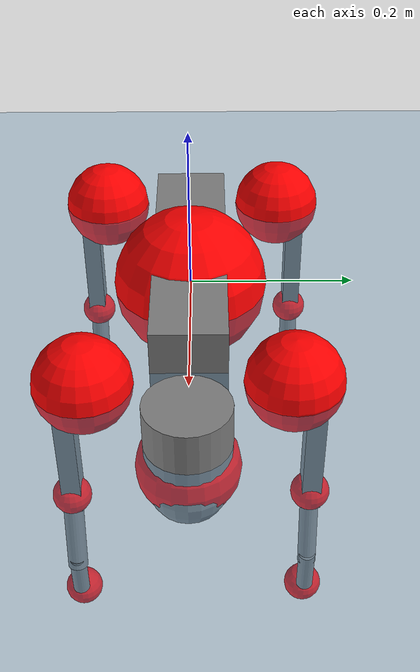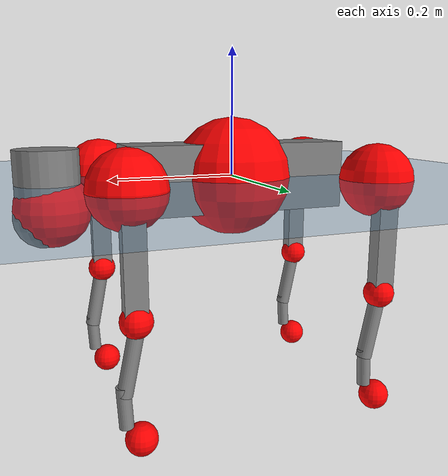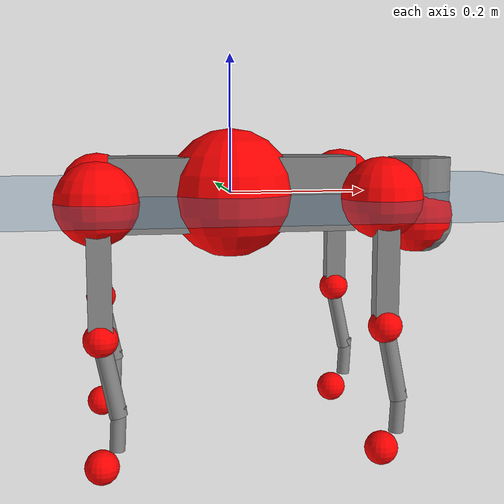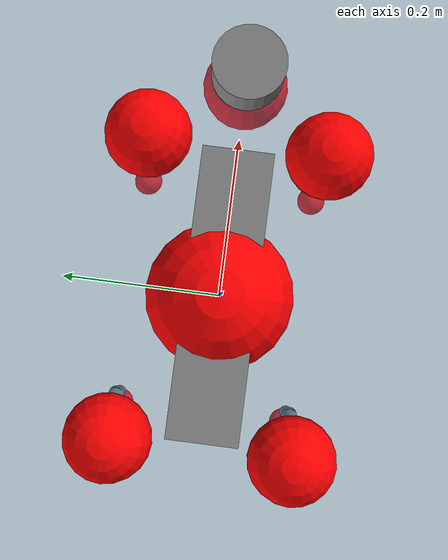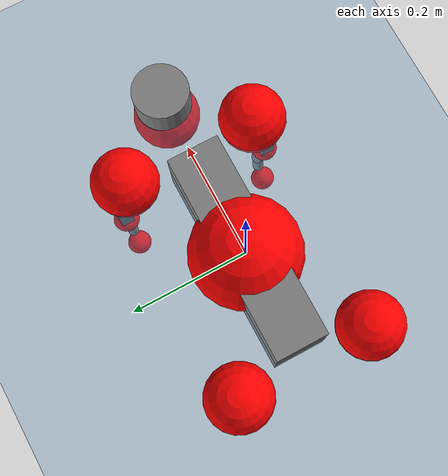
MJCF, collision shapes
<mujoco model="go2">
  <compiler angle="radian" assetdir="assets" balanceinertia="true" inertiafromgeom="false"/>

  <option timestep="0.005" density="1.2" viscosity="2e-05"/>

  <size nkey="1"/>

  <visual>
    <quality shadowsize="8192"/>
    <map shadowclip="0.5"/>
  </visual>

  <default>
    <default class="/">
      <geom contype="0" conaffinity="0" group="1" solref="-1000 -80"/>
      <site size="0.01 0.005 0.005" group="5"/>
      <general forcelimited="true" biastype="affine" gainprm="20" biasprm="0 -20 -0.5"/>
      <default class="go2">
        <joint armature="0.01" damping="0.01" frictionloss="0.2"/>
        <geom condim="1" margin="0.001"/>
        <default class="visual">
          <geom type="mesh" group="2"/>
        </default>
        <default class="collision">
          <geom group="3"/>
          <default class="foot">
            <geom size="0.022 0 0" condim="6" priority="1" friction="0.8 0.02 0.01" solimp="0.015 1 0.022"/>
          </default>
        </default>
        <default class="reward_collision_sphere">
          <geom group="5" rgba="1 0 0 1"/>
        </default>
      </default>
    </default>
  </default>

  <asset>
    <texture type="skybox" colorspace="auto" name="//unnamed_texture_0" builtin="gradient" rgb1="0.95 0.95 0.95" rgb2="0.95 0.95 0.95" width="100" height="600"/>
    <texture type="2d" colorspace="auto" name="texplane" builtin="checker" rgb1="0.345 0.575 0.748" rgb2="0.345 0.575 0.748" markrgb="1 1 1" width="512" height="512"/>
    <material name="MatPlane" class="/" texture="texplane" texuniform="true" texrepeat="2 2" specular="0.9"/>
    <material name="metal" class="/" rgba="0.9 0.95 0.95 1"/>
    <material name="black" class="/" rgba="0 0 0 1"/>
    <material name="white" class="/"/>
    <material name="gray" class="/" rgba="0.671705 0.692426 0.77427 1"/>
    <mesh name="base_0" class="/" file="base_0.obj"/>
    <mesh name="base_1" class="/" file="base_1.obj"/>
    <mesh name="base_2" class="/" file="base_2.obj"/>
    <mesh name="base_3" class="/" file="base_3.obj"/>
    <mesh name="base_4" class="/" file="base_4.obj"/>
    <mesh name="hip_0" class="/" file="hip_0.obj"/>
    <mesh name="hip_1" class="/" file="hip_1.obj"/>
    <mesh name="thigh_0" class="/" file="thigh_0.obj"/>
    <mesh name="thigh_1" class="/" file="thigh_1.obj"/>
    <mesh name="thigh_mirror_0" class="/" file="thigh_mirror_0.obj"/>
    <mesh name="thigh_mirror_1" class="/" file="thigh_mirror_1.obj"/>
    <mesh name="calf_0" class="/" file="calf_0.obj"/>
    <mesh name="calf_1" class="/" file="calf_1.obj"/>
    <mesh name="calf_mirror_0" class="/" file="calf_mirror_0.obj"/>
    <mesh name="calf_mirror_1" class="/" file="calf_mirror_1.obj"/>
    <mesh name="foot" class="/" file="foot.obj"/>
  </asset>

  <worldbody>
    <geom name="floor" class="/" size="100 100 0.125" type="plane" group="0" material="MatPlane"/>
    <light name="toplight_shadow" class="/" pos="0 0 5" dir="0.0990148 0.0990148 -0.990148" type="directional" ambient="0.04 0.04 0.04" diffuse="0.55 0.55 0.55" specular="0.12 0.12 0.12"/>
    <light name="toplight_fill" class="/" pos="0 0 5" dir="0.0990148 0.0990148 -0.990148" type="directional" castshadow="false" ambient="0.04 0.04 0.04" diffuse="0.3 0.3 0.3" specular="0.08 0.08 0.08"/>
    <body name="trunk" childclass="go2" pos="8.92436e-05 -0.000142383 -0.000678951" quat="1 0.000269905 0.000347471 0.000192735">
      <inertial pos="0.0193016 -0.00065612 -0.00359592" quat="-0.000296123 0.713461 -0.000848194 0.700694" mass="5.87214" diaginertia="0.111183 0.0967281 0.00913661"/>
      <joint name="//unnamed_joint_0" type="free" armature="0" damping="0" frictionloss="0"/>
      <geom name="//unnamed_geom_1" class="visual" material="black" mesh="base_0"/>
      <geom name="//unnamed_geom_2" class="visual" material="black" mesh="base_1"/>
      <geom name="//unnamed_geom_3" class="visual" material="black" mesh="base_2"/>
      <geom name="//unnamed_geom_4" class="visual" material="white" mesh="base_3"/>
      <geom name="//unnamed_geom_5" class="visual" material="gray" mesh="base_4"/>
      <geom name="trunk_1" class="collision" size="0.17716 0.0440311 0.053685" type="box"/>
      <geom name="trunk_2" class="collision" size="0.0470921 0.0423829" pos="0.287211 0 0.00820638" type="cylinder"/>
      <geom name="trunk_3" class="collision" size="0.0442666" pos="0.295273 0 -0.0492383"/>
      <geom name="//unnamed_geom_9" class="reward_collision_sphere" size="0.0941842"/>
      <geom name="//unnamed_geom_10" class="reward_collision_sphere" size="0.0565105" pos="0.282173 0 -0.0369287"/>
      <site name="imu" pos="-0.0200398 0.000466499 0.0291117" size="0.00941842"/>
      <camera name="track" pos="0 -1.99426 0" quat="0.707107 0.707107 0 0" mode="trackcom"/>
      <camera name="ego_camera" pos="0.314421 0 0.0369287" quat="-0.5 -0.5 0.5 0.5"/>
      <body name="FL_hip" pos="0.194342 0.046539 0.002234" quat="1 0.000300968 -9.69244e-05 4.6927e-05">
        <inertial pos="-0.00529433 0.00238701 -2.58099e-06" quat="0.497133 0.499213 0.505662 0.497946" mass="0.547027" diaginertia="0.00089819 0.00057233 0.000174327"/>
        <joint name="FL_hip_joint" pos="0 0 0" axis="1 3.85894e-05 0.000449307" range="-1.04899 1.03165" armature="0.00927015" damping="0.00154622" frictionloss="0.193399"/>
        <geom name="//unnamed_geom_11" class="visual" material="metal" mesh="hip_0"/>
        <geom name="//unnamed_geom_12" class="visual" material="gray" mesh="hip_1"/>
        <geom name="//unnamed_geom_13" class="collision" size="0.0433247 0.0188368" pos="0 0.0797703 0" quat="0.707107 0.707107 0 0" type="cylinder"/>
        <geom name="//unnamed_geom_14" class="reward_collision_sphere" size="0.0565105" pos="0 0.069799 0"/>
        <body name="FL_thigh" pos="0.000184359 0.0962539 0.00115839" quat="1 -0.000220944 0.000392828 0.000166693">
          <inertial pos="-0.00410037 -0.0220135 -0.027588" quat="0.829407 0.0848621 -0.0199364 0.551801" mass="0.964356" diaginertia="0.00616317 0.00562838 0.000324572"/>
          <joint name="FL_thigh_joint" pos="0 0 0" axis="-0.00829325 0.99996 -0.00322107" stiffness="0.0023719" range="-1.55291 3.48201" armature="0.00942637" damping="0.00685164" frictionloss="0.196459"/>
          <geom name="//unnamed_geom_15" class="visual" material="metal" mesh="thigh_0"/>
          <geom name="//unnamed_geom_16" class="visual" material="gray" mesh="thigh_1"/>
          <geom name="//unnamed_geom_17" class="collision" size="0.100306 0.0115376 0.0160113" pos="0 0 -0.0873979" quat="0.707107 0 0.707107 0" type="box"/>
          <body name="FL_calf" pos="-0.000893014 -0.000202892 -0.175185" quat="1 6.6776e-05 5.31089e-05 7.07053e-05">
            <inertial pos="0.00627258 -0.000290797 -0.114503" quat="0.710314 0.00186695 -0.00473091 0.703866" mass="0.201017" diaginertia="0.00153215 0.00143976 1.97323e-05"/>
            <joint name="FL_calf_joint" pos="0 0 0" axis="0.000316032 0.999989 0.00472275" range="-2.73699 -0.834353" armature="0.00915075" damping="0.000382601" frictionloss="0.188496"/>
            <geom name="//unnamed_geom_18" class="visual" material="gray" mesh="calf_0"/>
            <geom name="//unnamed_geom_19" class="visual" material="black" mesh="calf_1"/>
            <geom name="FL_calf0" class="collision" size="0.0113021 0.0565105" pos="0.00806207 0 -0.0492383" quat="0.994493 0 -0.104807 0" type="cylinder"/>
            <geom name="//unnamed_geom_21" class="collision" size="0.0103603 0.0306099" pos="0.0201552 0 -0.121454" quat="0.999688 0 0.0249974 0" type="cylinder"/>
            <geom name="//unnamed_geom_22" class="visual" pos="0 0 -0.174796" quat="1 0 0 0" material="black" mesh="foot"/>
            <geom name="FL_foot" class="foot" size="0.018362" pos="-0.00201552 0 -0.174796"/>
            <geom name="//unnamed_geom_24" class="reward_collision_sphere" size="0.0235461"/>
            <geom name="//unnamed_geom_25" class="reward_collision_sphere" size="0.0235461" pos="-0.00201552 0 -0.174796"/>
            <site name="FL_foot" class="foot" pos="-0.00201552 0 -0.174796" size="0.00941842"/>
          </body>
        </body>
      </body>
      <body name="FR_hip" pos="0.194442 -0.0470941 0.000918354" quat="1 -6.23309e-05 3.26858e-05 -2.63282e-05">
        <inertial pos="-0.00452778 -0.00368098 0.000222486" quat="0.503544 0.500402 0.497241 0.498791" mass="0.569441" diaginertia="0.000922692 0.000599139 0.000179949"/>
        <joint name="FR_hip_joint" pos="0 0 0" axis="0.999989 0.00337807 0.0033955" range="-1.04043 1.04496" armature="0.00961659" damping="0.0090362" frictionloss="0.181148"/>
        <geom name="//unnamed_geom_26" class="visual" pos="0 1.53752e-09 6.59473e-08" quat="4.63268e-05 1 0 0" material="metal" mesh="hip_0"/>
        <geom name="//unnamed_geom_27" class="visual" pos="0 2.4925e-09 -1.63113e-07" quat="4.63268e-05 1 0 0" material="gray" mesh="hip_1"/>
        <geom name="//unnamed_geom_28" class="collision" size="0.0433247 0.0188368" pos="0 -0.0797703 0" quat="0.707107 0.707107 0 0" type="cylinder"/>
        <geom name="//unnamed_geom_29" class="reward_collision_sphere" size="0.0565105" pos="0 -0.069799 0"/>
        <body name="FR_thigh" pos="-0.000429594 -0.0950862 -0.000477387" quat="1 0.000204296 -1.80901e-05 -0.000304767">
          <inertial pos="-0.00232086 0.0228163 -0.025863" quat="0.55271 -0.01793 0.0878635 0.828535" mass="0.958913" diaginertia="0.00620508 0.00570083 0.000330212"/>
          <joint name="FR_thigh_joint" pos="0 0 0" axis="-0.0025299 -0.999995 0.0017391" range="-3.50428 1.56534" armature="0.00968426" damping="0.0128994" frictionloss="0.179774"/>
          <geom name="//unnamed_geom_30" class="visual" material="metal" mesh="thigh_mirror_0"/>
          <geom name="//unnamed_geom_31" class="visual" material="gray" mesh="thigh_mirror_1"/>
          <geom name="//unnamed_geom_32" class="collision" size="0.100306 0.0115376 0.0160113" pos="0 0 -0.0873979" quat="0.707107 0 0.707107 0" type="box"/>
          <body name="FR_calf" pos="0.000671757 -0.00125844 -0.174264" quat="1 0.000141222 -0.000335386 -0.000194101">
            <inertial pos="0.00640426 0.000735153 -0.116166" quat="0.699076 -0.00843362 -5.95075e-06 0.714997" mass="0.199795" diaginertia="0.00153305 0.00146177 1.98382e-05"/>
            <joint name="FR_calf_joint" pos="0 0 0" axis="0.000774762 -0.99999 -0.00429985" range="0.811769 2.73887" armature="0.00951966" damping="0.0145562" frictionloss="0.179342"/>
            <geom name="//unnamed_geom_33" class="visual" material="gray" mesh="calf_mirror_0"/>
            <geom name="//unnamed_geom_34" class="visual" material="black" mesh="calf_mirror_1"/>
            <geom name="FR_calf0" class="collision" size="0.0122439 0.0565105" pos="0.0100776 0 -0.0492383" quat="0.995004 0 -0.0998334 0" type="cylinder"/>
            <geom name="//unnamed_geom_36" class="collision" size="0.0103603 0.0306099" pos="0.0201552 0 -0.121454" quat="0.999688 0 0.0249974 0" type="cylinder"/>
            <geom name="//unnamed_geom_37" class="visual" pos="0 0 -0.174796" quat="1 0 0 0" material="black" mesh="foot"/>
            <geom name="FR_foot" class="foot" size="0.0217764" pos="-0.00201552 0 -0.174796"/>
            <geom name="//unnamed_geom_39" class="reward_collision_sphere" size="0.0235461"/>
            <geom name="//unnamed_geom_40" class="reward_collision_sphere" size="0.0235461" pos="-0.00201552 0 -0.174796"/>
            <site name="FR_foot" class="foot" pos="-0.00201552 0 -0.174796" size="0.00941842"/>
          </body>
        </body>
      </body>
      <body name="RL_hip" pos="-0.19417 0.0471765 -0.0018089" quat="1 9.08797e-05 -2.28204e-05 4.69277e-05">
        <inertial pos="0.00544407 0.00176648 -0.00177732" quat="0.50569 0.497959 0.496472 0.49983" mass="0.575902" diaginertia="0.000955719 0.000595522 0.000183625"/>
        <joint name="RL_hip_joint" pos="0 0 0" axis="-0.999787 0.00314441 0.020388" stiffness="0.00442274" range="-1.04782 1.03567" armature="0.00927032" damping="0.00194538" frictionloss="0.189139"/>
        <geom name="//unnamed_geom_41" class="visual" pos="-1.63012e-09 0 -3.19542e-07" quat="4.63268e-05 0 1 0" material="metal" mesh="hip_0"/>
        <geom name="//unnamed_geom_42" class="visual" pos="-2.64263e-09 0 -2.83388e-07" quat="4.63268e-05 0 1 0" material="gray" mesh="hip_1"/>
        <geom name="//unnamed_geom_43" class="collision" size="0.0433247 0.0188368" pos="0 0.0797703 0" quat="0.707107 0.707107 0 0" type="cylinder"/>
        <geom name="//unnamed_geom_44" class="reward_collision_sphere" size="0.0565105" pos="0 0.069799 0"/>
        <body name="RL_thigh" pos="-0.000174272 0.0959295 -0.00111398" quat="1 2.25952e-06 0.000185784 0.000421135">
          <inertial pos="-0.00545313 -0.0227943 -0.0282996" quat="0.829916 0.0848165 -0.0200589 0.551039" mass="0.97749" diaginertia="0.00608387 0.00575679 0.000325322"/>
          <joint name="RL_thigh_joint" pos="0 0 0" axis="0.000133206 1 -2.39802e-05" stiffness="0.00823399" range="-0.503722 4.54855" armature="0.0095787" damping="0.00579768" frictionloss="0.188706"/>
          <geom name="//unnamed_geom_45" class="visual" material="metal" mesh="thigh_0"/>
          <geom name="//unnamed_geom_46" class="visual" material="gray" mesh="thigh_1"/>
          <geom name="//unnamed_geom_47" class="collision" size="0.100306 0.0115376 0.0160113" pos="0 0 -0.0873979" quat="0.707107 0 0.707107 0" type="box"/>
          <body name="RL_calf" pos="0.00125884 -0.00117251 -0.174404" quat="1 0.000105919 -5.63244e-05 -5.01359e-05">
            <inertial pos="0.00538956 0.000402739 -0.115324" quat="0.708865 0.00307257 -0.00280707 0.705332" mass="0.206168" diaginertia="0.00159427 0.00148774 2.01227e-05"/>
            <joint name="RL_calf_joint" pos="0 0 0" axis="-0.000359226 0.999966 0.0082532" range="-2.70949 -0.830591" armature="0.00995515" damping="0.00536229" frictionloss="0.18509"/>
            <geom name="//unnamed_geom_48" class="visual" material="gray" mesh="calf_0"/>
            <geom name="//unnamed_geom_49" class="visual" material="black" mesh="calf_1"/>
            <geom name="RL_calf0" class="collision" size="0.0122439 0.0565105" pos="0.0100776 0 -0.0492383" quat="0.995004 0 -0.0998334 0" type="cylinder"/>
            <geom name="//unnamed_geom_51" class="collision" size="0.0103603 0.0306099" pos="0.0201552 0 -0.121454" quat="0.999688 0 0.0249974 0" type="cylinder"/>
            <geom name="//unnamed_geom_52" class="visual" pos="0 0 -0.174796" quat="1 0 0 0" material="black" mesh="foot"/>
            <geom name="RL_foot" class="foot" size="0.0181588" pos="-0.00201552 0 -0.174796"/>
            <geom name="//unnamed_geom_54" class="reward_collision_sphere" size="0.0235461"/>
            <geom name="//unnamed_geom_55" class="reward_collision_sphere" size="0.0235461" pos="-0.00201552 0 -0.174796"/>
            <site name="RL_foot" class="foot" pos="-0.00201552 0 -0.174796" size="0.00941842"/>
          </body>
        </body>
      </body>
      <body name="RR_hip" pos="-0.193122 -0.0461023 -0.00256932" quat="1 4.19725e-05 -8.86138e-06 -0.000184412">
        <inertial pos="0.0061138 -0.00283859 -0.00135589" quat="0.495205 0.498962 0.493361 0.512253" mass="0.556932" diaginertia="0.000897492 0.000575062 0.000174909"/>
        <joint name="RR_hip_joint" pos="0 0 0" axis="-0.999981 0.00596523 0.00141968" range="-1.06233 1.02778" armature="0.0098263" damping="0.00864313" frictionloss="0.187617"/>
        <geom name="//unnamed_geom_56" class="visual" pos="1.62976e-09 1.53752e-09 -3.85489e-07" quat="2.14617e-09 4.63268e-05 4.63268e-05 -1" material="metal" mesh="hip_0"/>
        <geom name="//unnamed_geom_57" class="visual" pos="2.64354e-09 2.4925e-09 -1.20275e-07" quat="2.14617e-09 4.63268e-05 4.63268e-05 -1" material="gray" mesh="hip_1"/>
        <geom name="//unnamed_geom_58" class="collision" size="0.0433247 0.0188368" pos="0 -0.0797703 0" quat="0.707107 0.707107 0 0" type="cylinder"/>
        <geom name="//unnamed_geom_59" class="reward_collision_sphere" size="0.0565105" pos="0 -0.069799 0"/>
        <body name="RR_thigh" pos="0.00159962 -0.0959553 -0.00165793" quat="1 -0.000225783 -3.59371e-06 -0.000113355">
          <inertial pos="-0.00366103 0.0214824 -0.0269025" quat="0.551899 -0.0197691 0.0840997 0.829424" mass="0.971839" diaginertia="0.00624104 0.00579556 0.000327768"/>
          <joint name="RR_thigh_joint" pos="0 0 0" axis="-0.0029791 -0.999971 0.00700283" range="-4.55487 0.532301" armature="0.00920032" damping="0.0106486" frictionloss="0.18673"/>
          <geom name="//unnamed_geom_60" class="visual" material="metal" mesh="thigh_mirror_0"/>
          <geom name="//unnamed_geom_61" class="visual" material="gray" mesh="thigh_mirror_1"/>
          <geom name="//unnamed_geom_62" class="collision" size="0.100306 0.0115376 0.0160113" pos="0 0 -0.0873979" quat="0.707107 0 0.707107 0" type="box"/>
          <body name="RR_calf" pos="-0.000252327 0.000801942 -0.175125" quat="1 -0.000251678 0.000421678 0.000184758">
            <inertial pos="0.0063963 0.001602 -0.116346" quat="0.703505 -0.0044939 0.00152924 0.710675" mass="0.203603" diaginertia="0.0015723 0.00144258 1.99802e-05"/>
            <joint name="RR_calf_joint" pos="0 0 0" axis="0.00118772 -0.999998 -0.00174803" stiffness="0.000616667" range="0.8381 2.7457" armature="0.00951478" damping="0.0132754" frictionloss="0.179355"/>
            <geom name="//unnamed_geom_63" class="visual" material="gray" mesh="calf_mirror_0"/>
            <geom name="//unnamed_geom_64" class="visual" material="black" mesh="calf_mirror_1"/>
            <geom name="RR_calf0" class="collision" size="0.0122439 0.0565105" pos="0.0100776 0 -0.0492383" quat="0.995004 0 -0.0998334 0" type="cylinder"/>
            <geom name="//unnamed_geom_66" class="collision" size="0.0103603 0.0306099" pos="0.0201552 0 -0.121454" quat="0.999688 0 0.0249974 0" type="cylinder"/>
            <geom name="//unnamed_geom_67" class="visual" pos="0 0 -0.174796" quat="1 0 0 0" material="black" mesh="foot"/>
            <geom name="RR_foot" class="foot" size="0.0222655" pos="-0.00201552 0 -0.174796"/>
            <geom name="//unnamed_geom_69" class="reward_collision_sphere" size="0.0235461"/>
            <geom name="//unnamed_geom_70" class="reward_collision_sphere" size="0.0235461" pos="-0.00201552 0 -0.174796"/>
            <site name="RR_foot" class="foot" pos="-0.00201552 0 -0.174796" size="0.00941842"/>
          </body>
        </body>
      </body>
    </body>
  </worldbody>

  <contact>
    <pair class="/" geom1="floor" geom2="FL_foot" name="//unnamed_contact_0"/>
    <pair class="/" geom1="floor" geom2="FR_foot" name="//unnamed_contact_1"/>
    <pair class="/" geom1="floor" geom2="RL_foot" name="//unnamed_contact_2"/>
    <pair class="/" geom1="floor" geom2="RR_foot" name="//unnamed_contact_3"/>
  </contact>

  <actuator>
    <general name="FL_hip" class="/" joint="FL_hip_joint" forcerange="-22.2112 22.2112" gainprm="19.3428" biasprm="0 -19.3428 -0.482197"/>
    <general name="FL_thigh" class="/" joint="FL_thigh_joint" forcerange="-21.2364 21.2364" gainprm="19.3428" biasprm="0 -19.3428 -0.482197"/>
    <general name="FL_calf" class="/" joint="FL_calf_joint" forcerange="-43.7095 43.7095" gainprm="19.3428" biasprm="0 -19.3428 -0.482197"/>
    <general name="FR_hip" class="/" joint="FR_hip_joint" forcerange="-22.0524 22.0524" gainprm="19.3428" biasprm="0 -19.3428 -0.482197"/>
    <general name="FR_thigh" class="/" joint="FR_thigh_joint" forcerange="-21.9845 21.9845" gainprm="19.3428" biasprm="0 -19.3428 -0.482197"/>
    <general name="FR_calf" class="/" joint="FR_calf_joint" forcerange="-42.0143 42.0143" gainprm="19.3428" biasprm="0 -19.3428 -0.482197"/>
    <general name="RL_hip" class="/" joint="RL_hip_joint" forcerange="-22.1209 22.1209" gainprm="19.3428" biasprm="0 -19.3428 -0.482197"/>
    <general name="RL_thigh" class="/" joint="RL_thigh_joint" forcerange="-22.5653 22.5653" gainprm="19.3428" biasprm="0 -19.3428 -0.482197"/>
    <general name="RL_calf" class="/" joint="RL_calf_joint" forcerange="-41.4701 41.4701" gainprm="19.3428" biasprm="0 -19.3428 -0.482197"/>
    <general name="RR_hip" class="/" joint="RR_hip_joint" forcerange="-21.906 21.906" gainprm="19.3428" biasprm="0 -19.3428 -0.482197"/>
    <general name="RR_thigh" class="/" joint="RR_thigh_joint" forcerange="-22.8222 22.8222" gainprm="19.3428" biasprm="0 -19.3428 -0.482197"/>
    <general name="RR_calf" class="/" joint="RR_calf_joint" forcerange="-42.6532 42.6532" gainprm="19.3428" biasprm="0 -19.3428 -0.482197"/>
  </actuator>

  <sensor>
    <gyro site="imu" name="imu_angular_velocity"/>
    <velocimeter site="imu" name="imu_linear_velocity"/>
    <framelinvel objtype="site" objname="FL_foot" name="FL_foot_global_linear_velocity"/>
    <framelinvel objtype="site" objname="FR_foot" name="FR_foot_global_linear_velocity"/>
    <framelinvel objtype="site" objname="RL_foot" name="RL_foot_global_linear_velocity"/>
    <framelinvel objtype="site" objname="RR_foot" name="RR_foot_global_linear_velocity"/>
  </sensor>

  <keyframe>
    <key name="home" qpos="0 0 0.325 1 0 0 0 0.1 0.8 -1.5 -0.1 -0.8 1.5 -0.1 0.8 -1.5 0.1 -0.8 1.5"/>
  </keyframe>
</mujoco>
